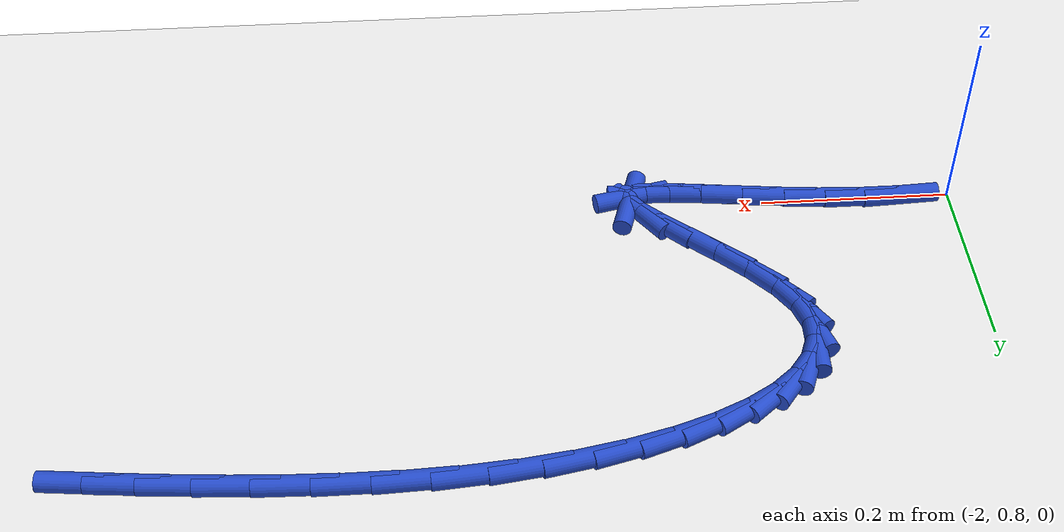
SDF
<sdf version="1.6">
 <world name="default">
  <model name="ground_plane">
   <static>1</static>
   <link name="link">
    <collision name="collision">
     <geometry><plane><normal>0 0 1</normal><size>100 100</size></plane></geometry>
     <surface><friction><ode><mu>100</mu><mu2>50</mu2></ode></friction></surface>
    </collision>
    <visual name="visual">
     <cast_shadows>0</cast_shadows>
     <geometry><plane><normal>0 0 1</normal><size>100 100</size></plane></geometry>
     <material>
      <script><uri>file://media/materials/scripts/gazebo.material</uri><name>Gazebo/WhiteGlow</name></script>
     </material>
    </visual>
   </link>
  </model>
  <model name="line">
   <link name="link_70">
    <pose>-1.1245861783075373 1.1352878423027855 0.01 0 1.57 -0.10543595013639143</pose>
    <collision name="collision">
     <geometry><cylinder><radius>0.01</radius><length>0.08</length></cylinder></geometry>
    </collision>
    <visual name="visual">
     <material>
      <script><name>Gazebo/Blue</name><uri>file://media/materials/scripts/gazebo.material</uri></script>
     </material>
     <geometry><cylinder><radius>0.01</radius><length>0.08</length></cylinder></geometry>
    </visual>
   </link>
   <link name="link_71">
    <pose>-1.1679552445900767 1.1398775210517822 0.01 0 1.57 -0.09256976171266783</pose>
    <collision name="collision">
     <geometry><cylinder><radius>0.01</radius><length>0.08</length></cylinder></geometry>
    </collision>
    <visual name="visual">
     <material>
      <script><name>Gazebo/Blue</name><uri>file://media/materials/scripts/gazebo.material</uri></script>
     </material>
     <geometry><cylinder><radius>0.01</radius><length>0.08</length></cylinder></geometry>
    </visual>
   </link>
   <link name="link_72">
    <pose>-1.2153708990254108 1.144279357420911 0.01 0 1.57 -0.07579806615652541</pose>
    <collision name="collision">
     <geometry><cylinder><radius>0.01</radius><length>0.08</length></cylinder></geometry>
    </collision>
    <visual name="visual">
     <material>
      <script><name>Gazebo/Blue</name><uri>file://media/materials/scripts/gazebo.material</uri></script>
     </material>
     <geometry><cylinder><radius>0.01</radius><length>0.08</length></cylinder></geometry>
    </visual>
   </link>
   <link name="link_73">
    <pose>-1.2658800823339107 1.1481152047451961 0.01 0 1.57 -0.05486853162927027</pose>
    <collision name="collision">
     <geometry><cylinder><radius>0.01</radius><length>0.08</length></cylinder></geometry>
    </collision>
    <visual name="visual">
     <material>
      <script><name>Gazebo/Blue</name><uri>file://media/materials/scripts/gazebo.material</uri></script>
     </material>
     <geometry><cylinder><radius>0.01</radius><length>0.08</length></cylinder></geometry>
    </visual>
   </link>
   <link name="link_74">
    <pose>-1.3185297352359469 1.1510069163596635 0.01 0 1.57 -0.029143211040475025</pose>
    <collision name="collision">
     <geometry><cylinder><radius>0.01</radius><length>0.08</length></cylinder></geometry>
    </collision>
    <visual name="visual">
     <material>
      <script><name>Gazebo/Blue</name><uri>file://media/materials/scripts/gazebo.material</uri></script>
     </material>
     <geometry><cylinder><radius>0.01</radius><length>0.08</length></cylinder></geometry>
    </visual>
   </link>
   <link name="link_75">
    <pose>-1.37236679845189 1.152576345599337 0.01 0 1.57 0.0024227134727034345</pose>
    <collision name="collision">
     <geometry><cylinder><radius>0.01</radius><length>0.08</length></cylinder></geometry>
    </collision>
    <visual name="visual">
     <material>
      <script><name>Gazebo/Blue</name><uri>file://media/materials/scripts/gazebo.material</uri></script>
     </material>
     <geometry><cylinder><radius>0.01</radius><length>0.08</length></cylinder></geometry>
    </visual>
   </link>
   <link name="link_76">
    <pose>-1.4264382127021118 1.1524453457992418 0.01 0 1.57 0.041390844245382384</pose>
    <collision name="collision">
     <geometry><cylinder><radius>0.01</radius><length>0.08</length></cylinder></geometry>
    </collision>
    <visual name="visual">
     <material>
      <script><name>Gazebo/Blue</name><uri>file://media/materials/scripts/gazebo.material</uri></script>
     </material>
     <geometry><cylinder><radius>0.01</radius><length>0.08</length></cylinder></geometry>
    </visual>
   </link>
   <link name="link_77">
    <pose>-1.4797909187069824 1.1502357702944026 0.01 0 1.57 0.08905563460168993</pose>
    <collision name="collision">
     <geometry><cylinder><radius>0.01</radius><length>0.08</length></cylinder></geometry>
    </collision>
    <visual name="visual">
     <material>
      <script><name>Gazebo/Blue</name><uri>file://media/materials/scripts/gazebo.material</uri></script>
     </material>
     <geometry><cylinder><radius>0.01</radius><length>0.08</length></cylinder></geometry>
    </visual>
   </link>
   <link name="link_78">
    <pose>-1.531505501804089 1.1456180813334416 0.01 0 1.57 0.14162701321229326</pose>
    <collision name="collision">
     <geometry><cylinder><radius>0.01</radius><length>0.08</length></cylinder></geometry>
    </collision>
    <visual name="visual">
     <material>
      <script><name>Gazebo/Blue</name><uri>file://media/materials/scripts/gazebo.material</uri></script>
     </material>
     <geometry><cylinder><radius>0.01</radius><length>0.08</length></cylinder></geometry>
    </visual>
   </link>
   <link name="link_79">
    <pose>-1.5808808031648611 1.1385780718136183 0.01 0 1.57 0.19876933803984131</pose>
    <collision name="collision">
     <geometry><cylinder><radius>0.01</radius><length>0.08</length></cylinder></geometry>
    </collision>
    <visual name="visual">
     <material>
      <script><name>Gazebo/Blue</name><uri>file://media/materials/scripts/gazebo.material</uri></script>
     </material>
     <geometry><cylinder><radius>0.01</radius><length>0.08</length></cylinder></geometry>
    </visual>
   </link>
   <link name="link_80">
    <pose>-1.62730274112224 1.1292273415686513 0.01 0 1.57 0.26324959470581266</pose>
    <collision name="collision">
     <geometry><cylinder><radius>0.01</radius><length>0.08</length></cylinder></geometry>
    </collision>
    <visual name="visual">
     <material>
      <script><name>Gazebo/Blue</name><uri>file://media/materials/scripts/gazebo.material</uri></script>
     </material>
     <geometry><cylinder><radius>0.01</radius><length>0.08</length></cylinder></geometry>
    </visual>
   </link>
   <link name="link_81">
    <pose>-1.6701574606562253 1.117677817886343 0.01 0 1.57 0.3389906283083136</pose>
    <collision name="collision">
     <geometry><cylinder><radius>0.01</radius><length>0.08</length></cylinder></geometry>
    </collision>
    <visual name="visual">
     <material>
      <script><name>Gazebo/Blue</name><uri>file://media/materials/scripts/gazebo.material</uri></script>
     </material>
     <geometry><cylinder><radius>0.01</radius><length>0.08</length></cylinder></geometry>
    </visual>
   </link>
   <link name="link_82">
    <pose>-1.7088311067468178 1.104041428054495 0.01 0 1.57 0.4317992041414885</pose>
    <collision name="collision">
     <geometry><cylinder><radius>0.01</radius><length>0.08</length></cylinder></geometry>
    </collision>
    <visual name="visual">
     <material>
      <script><name>Gazebo/Blue</name><uri>file://media/materials/scripts/gazebo.material</uri></script>
     </material>
     <geometry><cylinder><radius>0.01</radius><length>0.08</length></cylinder></geometry>
    </visual>
   </link>
   <link name="link_83">
    <pose>-1.7427098243740167 1.0884300993609117 0.01 0 1.57 0.5504919213226366</pose>
    <collision name="collision">
     <geometry><cylinder><radius>0.01</radius><length>0.08</length></cylinder></geometry>
    </collision>
    <visual name="visual">
     <material>
      <script><name>Gazebo/Blue</name><uri>file://media/materials/scripts/gazebo.material</uri></script>
     </material>
     <geometry><cylinder><radius>0.01</radius><length>0.08</length></cylinder></geometry>
    </visual>
   </link>
   <link name="link_84">
    <pose>-1.771179758517821 1.0709557590933942 0.01 0 1.57 0.7082379847038058</pose>
    <collision name="collision">
     <geometry><cylinder><radius>0.01</radius><length>0.08</length></cylinder></geometry>
    </collision>
    <visual name="visual">
     <material>
      <script><name>Gazebo/Blue</name><uri>file://media/materials/scripts/gazebo.material</uri></script>
     </material>
     <geometry><cylinder><radius>0.01</radius><length>0.08</length></cylinder></geometry>
    </visual>
   </link>
   <link name="link_85">
    <pose>-1.7936270541582326 1.051730334539746 0.01 0 1.57 0.9223333809827468</pose>
    <collision name="collision">
     <geometry><cylinder><radius>0.01</radius><length>0.08</length></cylinder></geometry>
    </collision>
    <visual name="visual">
     <material>
      <script><name>Gazebo/Blue</name><uri>file://media/materials/scripts/gazebo.material</uri></script>
     </material>
     <geometry><cylinder><radius>0.01</radius><length>0.08</length></cylinder></geometry>
    </visual>
   </link>
   <link name="link_86">
    <pose>-1.8094378562752507 1.0308657529877692 0.01 0 1.57 1.2056385677957617</pose>
    <collision name="collision">
     <geometry><cylinder><radius>0.01</radius><length>0.08</length></cylinder></geometry>
    </collision>
    <visual name="visual">
     <material>
      <script><name>Gazebo/Blue</name><uri>file://media/materials/scripts/gazebo.material</uri></script>
     </material>
     <geometry><cylinder><radius>0.01</radius><length>0.08</length></cylinder></geometry>
    </visual>
   </link>
   <link name="link_87">
    <pose>-1.8179983098488748 1.0084739417252662 0.01 0 1.57 1.5415591995622466</pose>
    <collision name="collision">
     <geometry><cylinder><radius>0.01</radius><length>0.08</length></cylinder></geometry>
    </collision>
    <visual name="visual">
     <material>
      <script><name>Gazebo/Blue</name><uri>file://media/materials/scripts/gazebo.material</uri></script>
     </material>
     <geometry><cylinder><radius>0.01</radius><length>0.08</length></cylinder></geometry>
    </visual>
   </link>
   <link name="link_88">
    <pose>-1.8186945598591047 0.98466682804004 0.01 0 1.57 -1.270279417949908</pose>
    <collision name="collision">
     <geometry><cylinder><radius>0.01</radius><length>0.08</length></cylinder></geometry>
    </collision>
    <visual name="visual">
     <material>
      <script><name>Gazebo/Blue</name><uri>file://media/materials/scripts/gazebo.material</uri></script>
     </material>
     <geometry><cylinder><radius>0.01</radius><length>0.08</length></cylinder></geometry>
    </visual>
   </link>
   <link name="link_89">
    <pose>-1.8109127512859413 0.9595563392198934 0.01 0 1.57 -1.0033975231734746</pose>
    <collision name="collision">
     <geometry><cylinder><radius>0.01</radius><length>0.08</length></cylinder></geometry>
    </collision>
    <visual name="visual">
     <material>
      <script><name>Gazebo/Blue</name><uri>file://media/materials/scripts/gazebo.material</uri></script>
     </material>
     <geometry><cylinder><radius>0.01</radius><length>0.08</length></cylinder></geometry>
    </visual>
   </link>
   <link name="link_90">
    <pose>-1.7941692544032535 0.9332839849991629 0.01 0 1.57 -0.8391419707525648</pose>
    <collision name="collision">
     <geometry><cylinder><radius>0.01</radius><length>0.08</length></cylinder></geometry>
    </collision>
    <visual name="visual">
     <material>
      <script><name>Gazebo/Blue</name><uri>file://media/materials/scripts/gazebo.material</uri></script>
     </material>
     <geometry><cylinder><radius>0.01</radius><length>0.08</length></cylinder></geometry>
    </visual>
   </link>
   <link name="link_91">
    <pose>-1.770094251565528 0.9064714562736258 0.01 0 1.57 -0.7538094187846851</pose>
    <collision name="collision">
     <geometry><cylinder><radius>0.01</radius><length>0.08</length></cylinder></geometry>
    </collision>
    <visual name="visual">
     <material>
      <script><name>Gazebo/Blue</name><uri>file://media/materials/scripts/gazebo.material</uri></script>
     </material>
     <geometry><cylinder><radius>0.01</radius><length>0.08</length></cylinder></geometry>
    </visual>
   </link>
   <link name="link_92">
    <pose>-1.742034032893983 0.8801302811569182 0.01 0 1.57 -0.7144378374661007</pose>
    <collision name="collision">
     <geometry><cylinder><radius>0.01</radius><length>0.08</length></cylinder></geometry>
    </collision>
    <visual name="visual">
     <material>
      <script><name>Gazebo/Blue</name><uri>file://media/materials/scripts/gazebo.material</uri></script>
     </material>
     <geometry><cylinder><radius>0.01</radius><length>0.08</length></cylinder></geometry>
    </visual>
   </link>
   <link name="link_93">
    <pose>-1.7133844881082316 0.855283254985994 0.01 0 1.57 -0.7126045308861473</pose>
    <collision name="collision">
     <geometry><cylinder><radius>0.01</radius><length>0.08</length></cylinder></geometry>
    </collision>
    <visual name="visual">
     <material>
      <script><name>Gazebo/Blue</name><uri>file://media/materials/scripts/gazebo.material</uri></script>
     </material>
     <geometry><cylinder><radius>0.01</radius><length>0.08</length></cylinder></geometry>
    </visual>
   </link>
   <link name="link_94">
    <pose>-1.687541506927888 0.8329531730978071 0.01 0 1.57 -0.7632793060775921</pose>
    <collision name="collision">
     <geometry><cylinder><radius>0.01</radius><length>0.08</length></cylinder></geometry>
    </collision>
    <visual name="visual">
     <material>
      <script><name>Gazebo/Blue</name><uri>file://media/materials/scripts/gazebo.material</uri></script>
     </material>
     <geometry><cylinder><radius>0.01</radius><length>0.08</length></cylinder></geometry>
    </visual>
   </link>
   <link name="link_95">
    <pose>-1.6679009790725674 0.8141628308293118 0.01 0 1.57 -0.9561790341499107</pose>
    <collision name="collision">
     <geometry><cylinder><radius>0.01</radius><length>0.08</length></cylinder></geometry>
    </collision>
    <visual name="visual">
     <material>
      <script><name>Gazebo/Blue</name><uri>file://media/materials/scripts/gazebo.material</uri></script>
     </material>
     <geometry><cylinder><radius>0.01</radius><length>0.08</length></cylinder></geometry>
    </visual>
   </link>
   <link name="link_96">
    <pose>-1.6578587942618839 0.7999350235174627 0.01 0 1.57 1.2712922149943746</pose>
    <collision name="collision">
     <geometry><cylinder><radius>0.01</radius><length>0.08</length></cylinder></geometry>
    </collision>
    <visual name="visual">
     <material>
      <script><name>Gazebo/Blue</name><uri>file://media/materials/scripts/gazebo.material</uri></script>
     </material>
     <geometry><cylinder><radius>0.01</radius><length>0.08</length></cylinder></geometry>
    </visual>
   </link>
   <link name="link_97">
    <pose>-1.660558014823667 0.7911938259615089 0.01 0 1.57 0.2294070333734203</pose>
    <collision name="collision">
     <geometry><cylinder><radius>0.01</radius><length>0.08</length></cylinder></geometry>
    </collision>
    <visual name="visual">
     <material>
      <script><name>Gazebo/Blue</name><uri>file://media/materials/scripts/gazebo.material</uri></script>
     </material>
     <geometry><cylinder><radius>0.01</radius><length>0.08</length></cylinder></geometry>
    </visual>
   </link>
   <link name="link_98">
    <pose>-1.6759218900090471 0.7876060849523122 0.01 0 1.57 -0.014228910456828905</pose>
    <collision name="collision">
     <geometry><cylinder><radius>0.01</radius><length>0.08</length></cylinder></geometry>
    </collision>
    <visual name="visual">
     <material>
      <script><name>Gazebo/Blue</name><uri>file://media/materials/scripts/gazebo.material</uri></script>
     </material>
     <geometry><cylinder><radius>0.01</radius><length>0.08</length></cylinder></geometry>
    </visual>
   </link>
   <link name="link_99">
    <pose>-1.7016548183764544 0.7879722611984229 0.01 0 1.57 -0.09166145992441119</pose>
    <collision name="collision">
     <geometry><cylinder><radius>0.01</radius><length>0.08</length></cylinder></geometry>
    </collision>
    <visual name="visual">
     <material>
      <script><name>Gazebo/Blue</name><uri>file://media/materials/scripts/gazebo.material</uri></script>
     </material>
     <geometry><cylinder><radius>0.01</radius><length>0.08</length></cylinder></geometry>
    </visual>
   </link>
   <link name="link_100">
    <pose>-1.7354173044807708 0.7910756762859189 0.01 0 1.57 -0.11667118763303287</pose>
    <collision name="collision">
     <geometry><cylinder><radius>0.01</radius><length>0.08</length></cylinder></geometry>
    </collision>
    <visual name="visual">
     <material>
      <script><name>Gazebo/Blue</name><uri>file://media/materials/scripts/gazebo.material</uri></script>
     </material>
     <geometry><cylinder><radius>0.01</radius><length>0.08</length></cylinder></geometry>
    </visual>
   </link>
   <link name="link_101">
    <pose>-1.7748698528768756 0.7956996518008771 0.01 0 1.57 -0.11462382636435743</pose>
    <collision name="collision">
     <geometry><cylinder><radius>0.01</radius><length>0.08</length></cylinder></geometry>
    </collision>
    <visual name="visual">
     <material>
      <script><name>Gazebo/Blue</name><uri>file://media/materials/scripts/gazebo.material</uri></script>
     </material>
     <geometry><cylinder><radius>0.01</radius><length>0.08</length></cylinder></geometry>
    </visual>
   </link>
   <link name="link_102">
    <pose>-1.8176729681196504 0.8006275093293749 0.01 0 1.57 -0.09138569894738964</pose>
    <collision name="collision">
     <geometry><cylinder><radius>0.01</radius><length>0.08</length></cylinder></geometry>
    </collision>
    <visual name="visual">
     <material>
      <script><name>Gazebo/Blue</name><uri>file://media/materials/scripts/gazebo.material</uri></script>
     </material>
     <geometry><cylinder><radius>0.01</radius><length>0.08</length></cylinder></geometry>
    </visual>
   </link>
   <link name="link_103">
    <pose>-1.861487399038118 0.8046427053813595 0.01 0 1.57 -0.04965591564825843</pose>
    <collision name="collision">
     <geometry><cylinder><radius>0.01</radius><length>0.08</length></cylinder></geometry>
    </collision>
    <visual name="visual">
     <material>
      <script><name>Gazebo/Blue</name><uri>file://media/materials/scripts/gazebo.material</uri></script>
     </material>
     <geometry><cylinder><radius>0.01</radius><length>0.08</length></cylinder></geometry>
    </visual>
   </link>
   <link name="link_104">
    <pose>-1.904422418750365 0.8067764371080821 0.01 0 1.57 -0.0010603877175409903</pose>
    <collision name="collision">
     <geometry><cylinder><radius>0.01</radius><length>0.08</length></cylinder></geometry>
    </collision>
    <visual name="visual">
     <material>
      <script><name>Gazebo/Blue</name><uri>file://media/materials/scripts/gazebo.material</uri></script>
     </material>
     <geometry><cylinder><radius>0.01</radius><length>0.08</length></cylinder></geometry>
    </visual>
   </link>
   <link name="link_105">
    <pose>-1.9459643101456598 0.8068204876359916 0.01 0 1.57 0.05279436316203223</pose>
    <collision name="collision">
     <geometry><cylinder><radius>0.01</radius><length>0.08</length></cylinder></geometry>
    </collision>
    <visual name="visual">
     <material>
      <script><name>Gazebo/Blue</name><uri>file://media/materials/scripts/gazebo.material</uri></script>
     </material>
     <geometry><cylinder><radius>0.01</radius><length>0.08</length></cylinder></geometry>
    </visual>
   </link>
  </model>
 </world>
</sdf>
